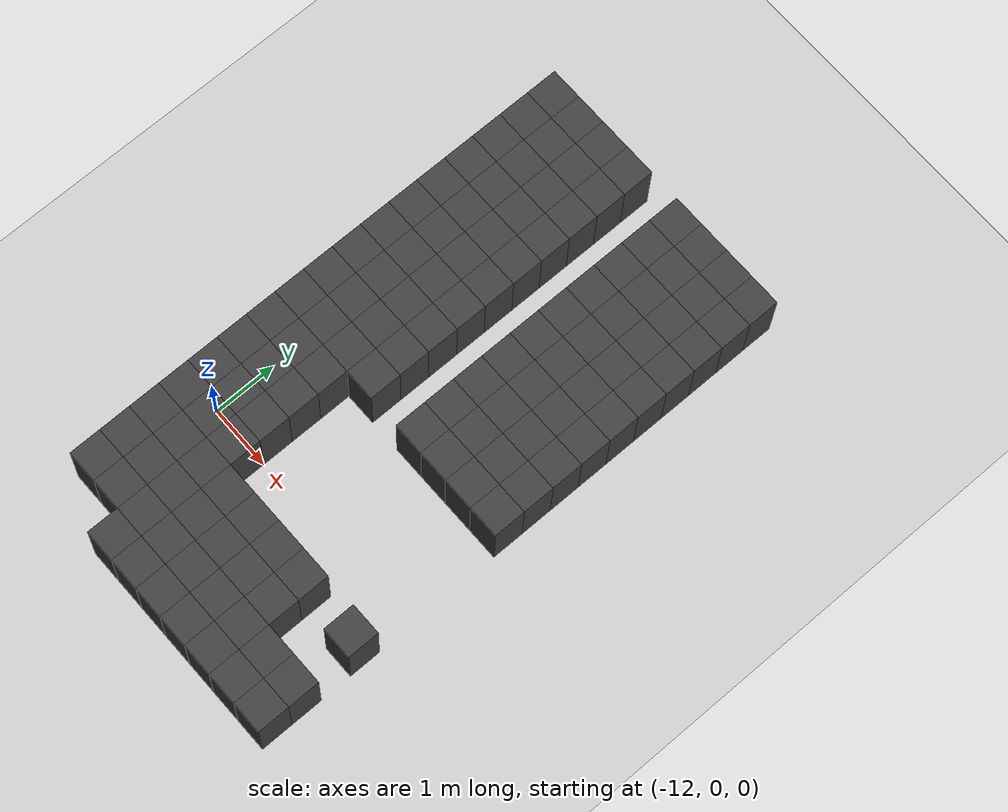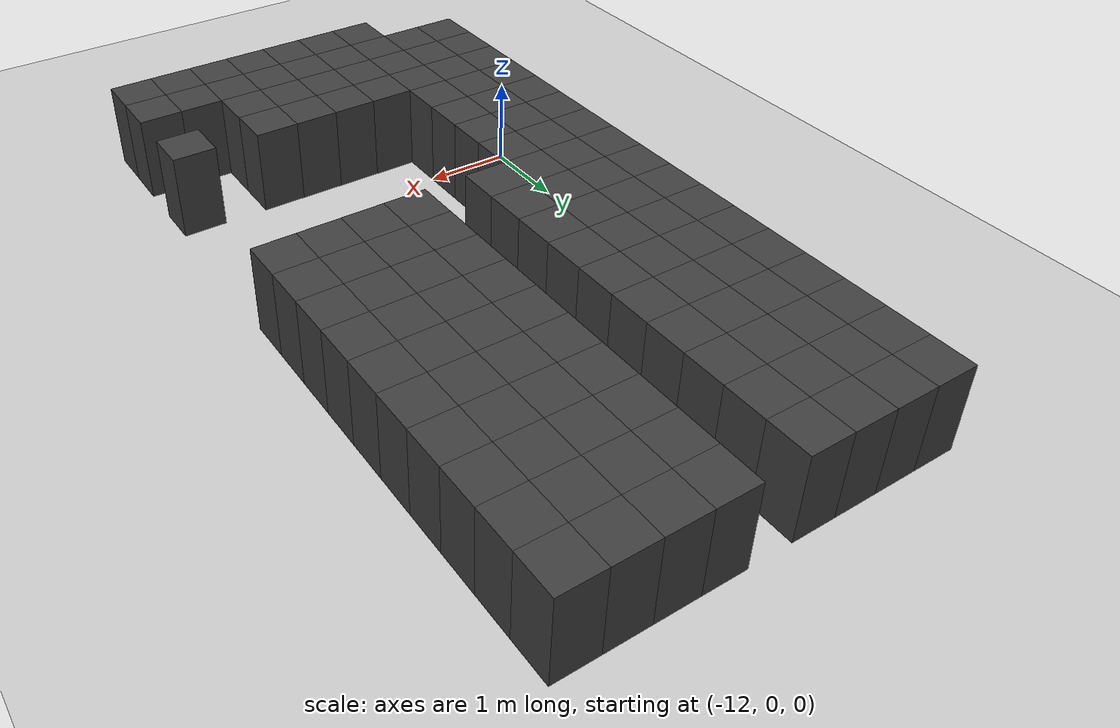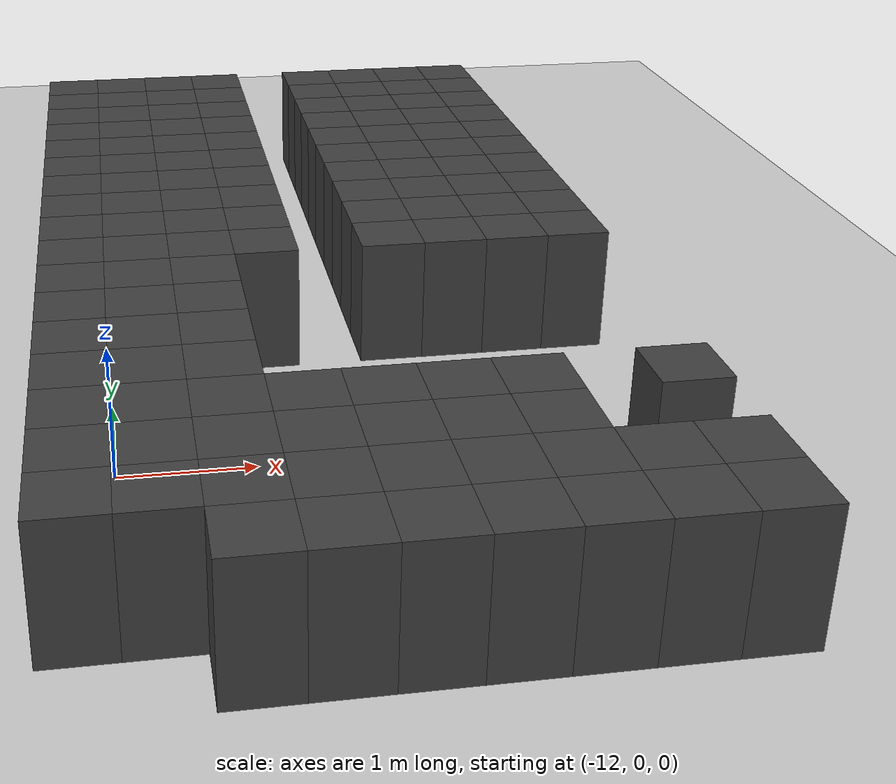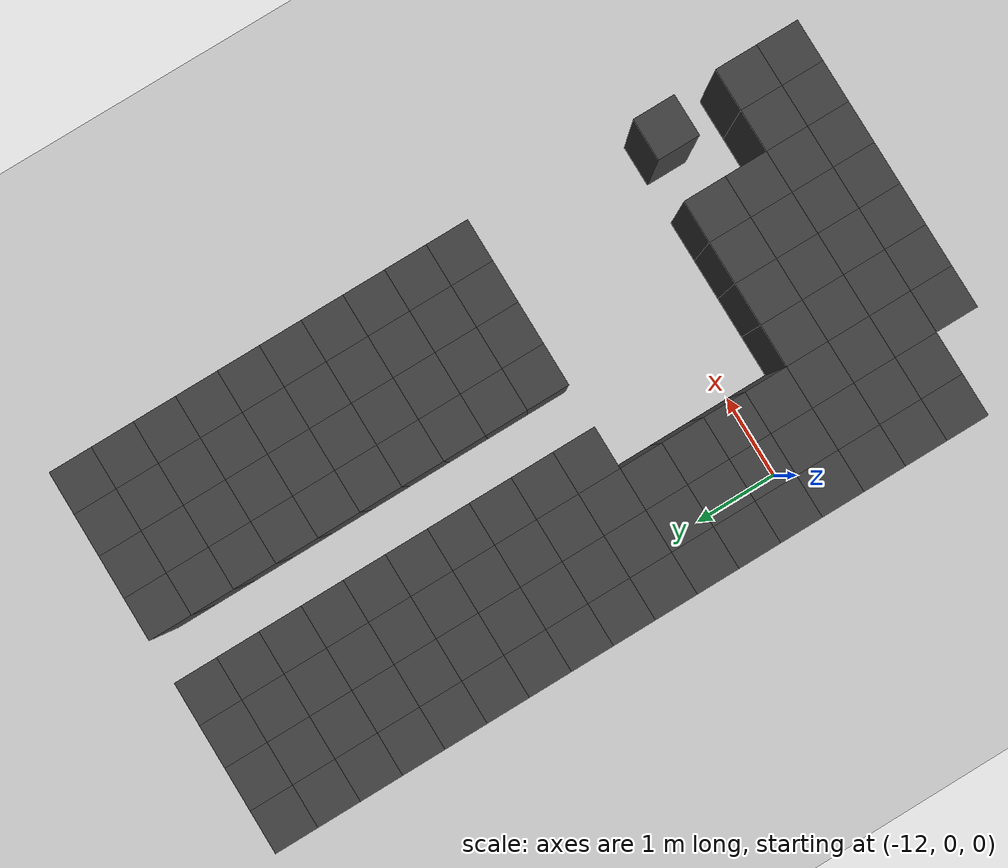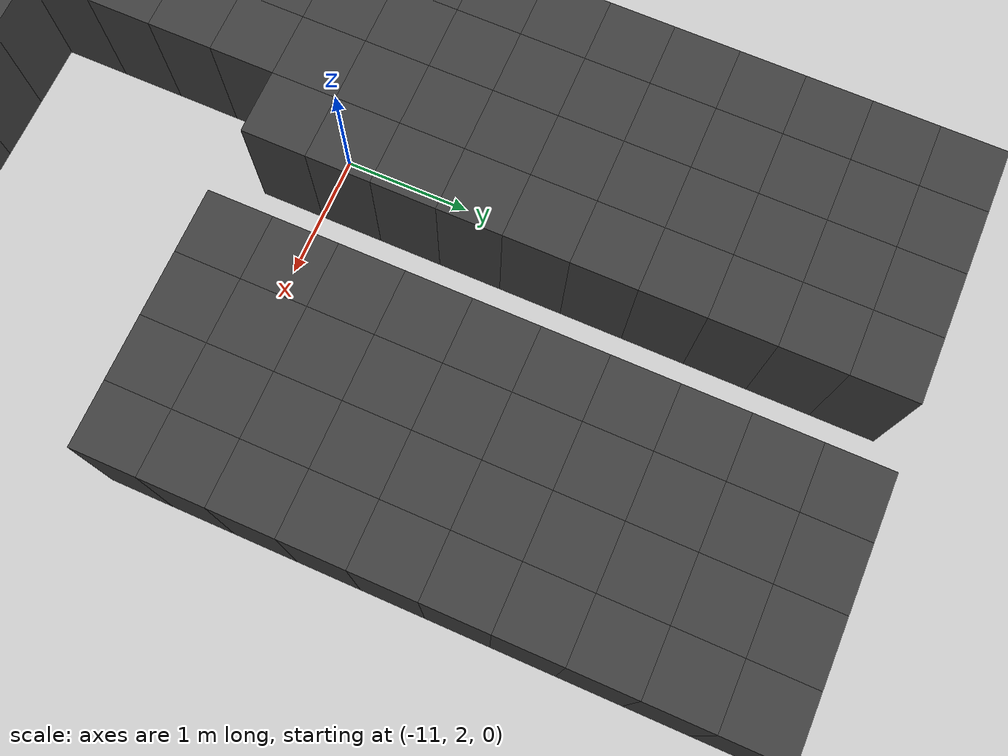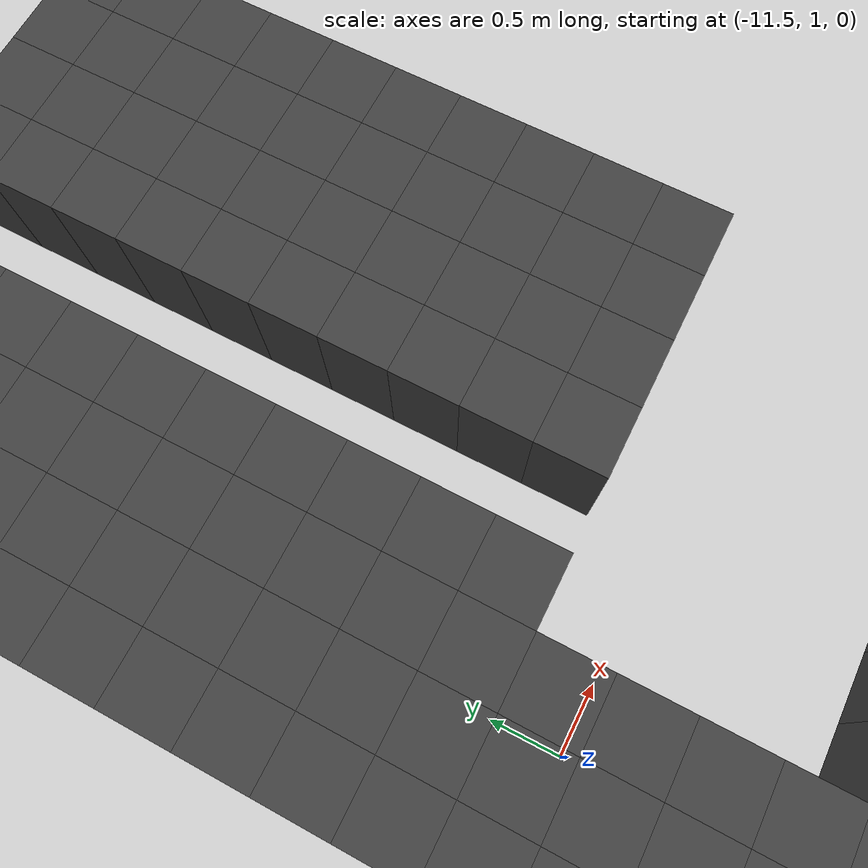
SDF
<sdf version="1.7">
 <world name="map_13364">
  <model name="ground_plane">
   <static>true</static>
   <link name="link">
    <collision name="collision">
     <geometry><plane><normal>0 0 1</normal><size>200 200</size></plane></geometry>
    </collision>
    <visual name="visual">
     <geometry><plane><normal>0 0 1</normal><size>200 200</size></plane></geometry>
     <material><ambient>0.8 0.8 0.8 1</ambient><diffuse>0.8 0.8 0.8 1</diffuse></material>
    </visual>
   </link>
  </model>
  <model name="maze_environment">
   <static>true</static>
   <link name="wall_536">
    <pose>-12.250 6.250 0.500 0 0 0</pose>
    <collision name="col"><geometry><box><size>0.5 0.5 1.0</size></box></geometry></collision>
    <visual name="vis">
     <geometry><box><size>0.5 0.5 1.0</size></box></geometry>
     <material><ambient>0.15 0.15 0.15 1</ambient><diffuse>0.25 0.25 0.25 1</diffuse></material>
    </visual>
   </link>
   <link name="wall_537">
    <pose>-11.750 6.250 0.500 0 0 0</pose>
    <collision name="col"><geometry><box><size>0.5 0.5 1.0</size></box></geometry></collision>
    <visual name="vis">
     <geometry><box><size>0.5 0.5 1.0</size></box></geometry>
     <material><ambient>0.15 0.15 0.15 1</ambient><diffuse>0.25 0.25 0.25 1</diffuse></material>
    </visual>
   </link>
   <link name="wall_538">
    <pose>-11.250 6.250 0.500 0 0 0</pose>
    <collision name="col"><geometry><box><size>0.5 0.5 1.0</size></box></geometry></collision>
    <visual name="vis">
     <geometry><box><size>0.5 0.5 1.0</size></box></geometry>
     <material><ambient>0.15 0.15 0.15 1</ambient><diffuse>0.25 0.25 0.25 1</diffuse></material>
    </visual>
   </link>
   <link name="wall_539">
    <pose>-10.750 6.250 0.500 0 0 0</pose>
    <collision name="col"><geometry><box><size>0.5 0.5 1.0</size></box></geometry></collision>
    <visual name="vis">
     <geometry><box><size>0.5 0.5 1.0</size></box></geometry>
     <material><ambient>0.15 0.15 0.15 1</ambient><diffuse>0.25 0.25 0.25 1</diffuse></material>
    </visual>
   </link>
   <link name="wall_540">
    <pose>-9.750 6.250 0.500 0 0 0</pose>
    <collision name="col"><geometry><box><size>0.5 0.5 1.0</size></box></geometry></collision>
    <visual name="vis">
     <geometry><box><size>0.5 0.5 1.0</size></box></geometry>
     <material><ambient>0.15 0.15 0.15 1</ambient><diffuse>0.25 0.25 0.25 1</diffuse></material>
    </visual>
   </link>
   <link name="wall_541">
    <pose>-9.250 6.250 0.500 0 0 0</pose>
    <collision name="col"><geometry><box><size>0.5 0.5 1.0</size></box></geometry></collision>
    <visual name="vis">
     <geometry><box><size>0.5 0.5 1.0</size></box></geometry>
     <material><ambient>0.15 0.15 0.15 1</ambient><diffuse>0.25 0.25 0.25 1</diffuse></material>
    </visual>
   </link>
   <link name="wall_542">
    <pose>-8.750 6.250 0.500 0 0 0</pose>
    <collision name="col"><geometry><box><size>0.5 0.5 1.0</size></box></geometry></collision>
    <visual name="vis">
     <geometry><box><size>0.5 0.5 1.0</size></box></geometry>
     <material><ambient>0.15 0.15 0.15 1</ambient><diffuse>0.25 0.25 0.25 1</diffuse></material>
    </visual>
   </link>
   <link name="wall_543">
    <pose>-8.250 6.250 0.500 0 0 0</pose>
    <collision name="col"><geometry><box><size>0.5 0.5 1.0</size></box></geometry></collision>
    <visual name="vis">
     <geometry><box><size>0.5 0.5 1.0</size></box></geometry>
     <material><ambient>0.15 0.15 0.15 1</ambient><diffuse>0.25 0.25 0.25 1</diffuse></material>
    </visual>
   </link>
   <link name="wall_568">
    <pose>-12.250 5.750 0.500 0 0 0</pose>
    <collision name="col"><geometry><box><size>0.5 0.5 1.0</size></box></geometry></collision>
    <visual name="vis">
     <geometry><box><size>0.5 0.5 1.0</size></box></geometry>
     <material><ambient>0.15 0.15 0.15 1</ambient><diffuse>0.25 0.25 0.25 1</diffuse></material>
    </visual>
   </link>
   <link name="wall_569">
    <pose>-11.750 5.750 0.500 0 0 0</pose>
    <collision name="col"><geometry><box><size>0.5 0.5 1.0</size></box></geometry></collision>
    <visual name="vis">
     <geometry><box><size>0.5 0.5 1.0</size></box></geometry>
     <material><ambient>0.15 0.15 0.15 1</ambient><diffuse>0.25 0.25 0.25 1</diffuse></material>
    </visual>
   </link>
   <link name="wall_570">
    <pose>-11.250 5.750 0.500 0 0 0</pose>
    <collision name="col"><geometry><box><size>0.5 0.5 1.0</size></box></geometry></collision>
    <visual name="vis">
     <geometry><box><size>0.5 0.5 1.0</size></box></geometry>
     <material><ambient>0.15 0.15 0.15 1</ambient><diffuse>0.25 0.25 0.25 1</diffuse></material>
    </visual>
   </link>
   <link name="wall_571">
    <pose>-10.750 5.750 0.500 0 0 0</pose>
    <collision name="col"><geometry><box><size>0.5 0.5 1.0</size></box></geometry></collision>
    <visual name="vis">
     <geometry><box><size>0.5 0.5 1.0</size></box></geometry>
     <material><ambient>0.15 0.15 0.15 1</ambient><diffuse>0.25 0.25 0.25 1</diffuse></material>
    </visual>
   </link>
   <link name="wall_572">
    <pose>-9.750 5.750 0.500 0 0 0</pose>
    <collision name="col"><geometry><box><size>0.5 0.5 1.0</size></box></geometry></collision>
    <visual name="vis">
     <geometry><box><size>0.5 0.5 1.0</size></box></geometry>
     <material><ambient>0.15 0.15 0.15 1</ambient><diffuse>0.25 0.25 0.25 1</diffuse></material>
    </visual>
   </link>
   <link name="wall_573">
    <pose>-9.250 5.750 0.500 0 0 0</pose>
    <collision name="col"><geometry><box><size>0.5 0.5 1.0</size></box></geometry></collision>
    <visual name="vis">
     <geometry><box><size>0.5 0.5 1.0</size></box></geometry>
     <material><ambient>0.15 0.15 0.15 1</ambient><diffuse>0.25 0.25 0.25 1</diffuse></material>
    </visual>
   </link>
   <link name="wall_574">
    <pose>-8.750 5.750 0.500 0 0 0</pose>
    <collision name="col"><geometry><box><size>0.5 0.5 1.0</size></box></geometry></collision>
    <visual name="vis">
     <geometry><box><size>0.5 0.5 1.0</size></box></geometry>
     <material><ambient>0.15 0.15 0.15 1</ambient><diffuse>0.25 0.25 0.25 1</diffuse></material>
    </visual>
   </link>
   <link name="wall_575">
    <pose>-8.250 5.750 0.500 0 0 0</pose>
    <collision name="col"><geometry><box><size>0.5 0.5 1.0</size></box></geometry></collision>
    <visual name="vis">
     <geometry><box><size>0.5 0.5 1.0</size></box></geometry>
     <material><ambient>0.15 0.15 0.15 1</ambient><diffuse>0.25 0.25 0.25 1</diffuse></material>
    </visual>
   </link>
   <link name="wall_595">
    <pose>-12.250 5.250 0.500 0 0 0</pose>
    <collision name="col"><geometry><box><size>0.5 0.5 1.0</size></box></geometry></collision>
    <visual name="vis">
     <geometry><box><size>0.5 0.5 1.0</size></box></geometry>
     <material><ambient>0.15 0.15 0.15 1</ambient><diffuse>0.25 0.25 0.25 1</diffuse></material>
    </visual>
   </link>
   <link name="wall_596">
    <pose>-11.750 5.250 0.500 0 0 0</pose>
    <collision name="col"><geometry><box><size>0.5 0.5 1.0</size></box></geometry></collision>
    <visual name="vis">
     <geometry><box><size>0.5 0.5 1.0</size></box></geometry>
     <material><ambient>0.15 0.15 0.15 1</ambient><diffuse>0.25 0.25 0.25 1</diffuse></material>
    </visual>
   </link>
   <link name="wall_597">
    <pose>-11.250 5.250 0.500 0 0 0</pose>
    <collision name="col"><geometry><box><size>0.5 0.5 1.0</size></box></geometry></collision>
    <visual name="vis">
     <geometry><box><size>0.5 0.5 1.0</size></box></geometry>
     <material><ambient>0.15 0.15 0.15 1</ambient><diffuse>0.25 0.25 0.25 1</diffuse></material>
    </visual>
   </link>
   <link name="wall_598">
    <pose>-10.750 5.250 0.500 0 0 0</pose>
    <collision name="col"><geometry><box><size>0.5 0.5 1.0</size></box></geometry></collision>
    <visual name="vis">
     <geometry><box><size>0.5 0.5 1.0</size></box></geometry>
     <material><ambient>0.15 0.15 0.15 1</ambient><diffuse>0.25 0.25 0.25 1</diffuse></material>
    </visual>
   </link>
   <link name="wall_599">
    <pose>-9.750 5.250 0.500 0 0 0</pose>
    <collision name="col"><geometry><box><size>0.5 0.5 1.0</size></box></geometry></collision>
    <visual name="vis">
     <geometry><box><size>0.5 0.5 1.0</size></box></geometry>
     <material><ambient>0.15 0.15 0.15 1</ambient><diffuse>0.25 0.25 0.25 1</diffuse></material>
    </visual>
   </link>
   <link name="wall_600">
    <pose>-9.250 5.250 0.500 0 0 0</pose>
    <collision name="col"><geometry><box><size>0.5 0.5 1.0</size></box></geometry></collision>
    <visual name="vis">
     <geometry><box><size>0.5 0.5 1.0</size></box></geometry>
     <material><ambient>0.15 0.15 0.15 1</ambient><diffuse>0.25 0.25 0.25 1</diffuse></material>
    </visual>
   </link>
   <link name="wall_601">
    <pose>-8.750 5.250 0.500 0 0 0</pose>
    <collision name="col"><geometry><box><size>0.5 0.5 1.0</size></box></geometry></collision>
    <visual name="vis">
     <geometry><box><size>0.5 0.5 1.0</size></box></geometry>
     <material><ambient>0.15 0.15 0.15 1</ambient><diffuse>0.25 0.25 0.25 1</diffuse></material>
    </visual>
   </link>
   <link name="wall_602">
    <pose>-8.250 5.250 0.500 0 0 0</pose>
    <collision name="col"><geometry><box><size>0.5 0.5 1.0</size></box></geometry></collision>
    <visual name="vis">
     <geometry><box><size>0.5 0.5 1.0</size></box></geometry>
     <material><ambient>0.15 0.15 0.15 1</ambient><diffuse>0.25 0.25 0.25 1</diffuse></material>
    </visual>
   </link>
   <link name="wall_629">
    <pose>-12.250 4.750 0.500 0 0 0</pose>
    <collision name="col"><geometry><box><size>0.5 0.5 1.0</size></box></geometry></collision>
    <visual name="vis">
     <geometry><box><size>0.5 0.5 1.0</size></box></geometry>
     <material><ambient>0.15 0.15 0.15 1</ambient><diffuse>0.25 0.25 0.25 1</diffuse></material>
    </visual>
   </link>
   <link name="wall_630">
    <pose>-11.750 4.750 0.500 0 0 0</pose>
    <collision name="col"><geometry><box><size>0.5 0.5 1.0</size></box></geometry></collision>
    <visual name="vis">
     <geometry><box><size>0.5 0.5 1.0</size></box></geometry>
     <material><ambient>0.15 0.15 0.15 1</ambient><diffuse>0.25 0.25 0.25 1</diffuse></material>
    </visual>
   </link>
   <link name="wall_631">
    <pose>-11.250 4.750 0.500 0 0 0</pose>
    <collision name="col"><geometry><box><size>0.5 0.5 1.0</size></box></geometry></collision>
    <visual name="vis">
     <geometry><box><size>0.5 0.5 1.0</size></box></geometry>
     <material><ambient>0.15 0.15 0.15 1</ambient><diffuse>0.25 0.25 0.25 1</diffuse></material>
    </visual>
   </link>
   <link name="wall_632">
    <pose>-10.750 4.750 0.500 0 0 0</pose>
    <collision name="col"><geometry><box><size>0.5 0.5 1.0</size></box></geometry></collision>
    <visual name="vis">
     <geometry><box><size>0.5 0.5 1.0</size></box></geometry>
     <material><ambient>0.15 0.15 0.15 1</ambient><diffuse>0.25 0.25 0.25 1</diffuse></material>
    </visual>
   </link>
   <link name="wall_633">
    <pose>-9.750 4.750 0.500 0 0 0</pose>
    <collision name="col"><geometry><box><size>0.5 0.5 1.0</size></box></geometry></collision>
    <visual name="vis">
     <geometry><box><size>0.5 0.5 1.0</size></box></geometry>
     <material><ambient>0.15 0.15 0.15 1</ambient><diffuse>0.25 0.25 0.25 1</diffuse></material>
    </visual>
   </link>
   <link name="wall_634">
    <pose>-9.250 4.750 0.500 0 0 0</pose>
    <collision name="col"><geometry><box><size>0.5 0.5 1.0</size></box></geometry></collision>
    <visual name="vis">
     <geometry><box><size>0.5 0.5 1.0</size></box></geometry>
     <material><ambient>0.15 0.15 0.15 1</ambient><diffuse>0.25 0.25 0.25 1</diffuse></material>
    </visual>
   </link>
   <link name="wall_635">
    <pose>-8.750 4.750 0.500 0 0 0</pose>
    <collision name="col"><geometry><box><size>0.5 0.5 1.0</size></box></geometry></collision>
    <visual name="vis">
     <geometry><box><size>0.5 0.5 1.0</size></box></geometry>
     <material><ambient>0.15 0.15 0.15 1</ambient><diffuse>0.25 0.25 0.25 1</diffuse></material>
    </visual>
   </link>
   <link name="wall_636">
    <pose>-8.250 4.750 0.500 0 0 0</pose>
    <collision name="col"><geometry><box><size>0.5 0.5 1.0</size></box></geometry></collision>
    <visual name="vis">
     <geometry><box><size>0.5 0.5 1.0</size></box></geometry>
     <material><ambient>0.15 0.15 0.15 1</ambient><diffuse>0.25 0.25 0.25 1</diffuse></material>
    </visual>
   </link>
   <link name="wall_649">
    <pose>-12.250 4.250 0.500 0 0 0</pose>
    <collision name="col"><geometry><box><size>0.5 0.5 1.0</size></box></geometry></collision>
    <visual name="vis">
     <geometry><box><size>0.5 0.5 1.0</size></box></geometry>
     <material><ambient>0.15 0.15 0.15 1</ambient><diffuse>0.25 0.25 0.25 1</diffuse></material>
    </visual>
   </link>
   <link name="wall_650">
    <pose>-11.750 4.250 0.500 0 0 0</pose>
    <collision name="col"><geometry><box><size>0.5 0.5 1.0</size></box></geometry></collision>
    <visual name="vis">
     <geometry><box><size>0.5 0.5 1.0</size></box></geometry>
     <material><ambient>0.15 0.15 0.15 1</ambient><diffuse>0.25 0.25 0.25 1</diffuse></material>
    </visual>
   </link>
   <link name="wall_651">
    <pose>-11.250 4.250 0.500 0 0 0</pose>
    <collision name="col"><geometry><box><size>0.5 0.5 1.0</size></box></geometry></collision>
    <visual name="vis">
     <geometry><box><size>0.5 0.5 1.0</size></box></geometry>
     <material><ambient>0.15 0.15 0.15 1</ambient><diffuse>0.25 0.25 0.25 1</diffuse></material>
    </visual>
   </link>
   <link name="wall_652">
    <pose>-10.750 4.250 0.500 0 0 0</pose>
    <collision name="col"><geometry><box><size>0.5 0.5 1.0</size></box></geometry></collision>
    <visual name="vis">
     <geometry><box><size>0.5 0.5 1.0</size></box></geometry>
     <material><ambient>0.15 0.15 0.15 1</ambient><diffuse>0.25 0.25 0.25 1</diffuse></material>
    </visual>
   </link>
   <link name="wall_653">
    <pose>-9.750 4.250 0.500 0 0 0</pose>
    <collision name="col"><geometry><box><size>0.5 0.5 1.0</size></box></geometry></collision>
    <visual name="vis">
     <geometry><box><size>0.5 0.5 1.0</size></box></geometry>
     <material><ambient>0.15 0.15 0.15 1</ambient><diffuse>0.25 0.25 0.25 1</diffuse></material>
    </visual>
   </link>
   <link name="wall_654">
    <pose>-9.250 4.250 0.500 0 0 0</pose>
    <collision name="col"><geometry><box><size>0.5 0.5 1.0</size></box></geometry></collision>
    <visual name="vis">
     <geometry><box><size>0.5 0.5 1.0</size></box></geometry>
     <material><ambient>0.15 0.15 0.15 1</ambient><diffuse>0.25 0.25 0.25 1</diffuse></material>
    </visual>
   </link>
   <link name="wall_655">
    <pose>-8.750 4.250 0.500 0 0 0</pose>
    <collision name="col"><geometry><box><size>0.5 0.5 1.0</size></box></geometry></collision>
    <visual name="vis">
     <geometry><box><size>0.5 0.5 1.0</size></box></geometry>
     <material><ambient>0.15 0.15 0.15 1</ambient><diffuse>0.25 0.25 0.25 1</diffuse></material>
    </visual>
   </link>
   <link name="wall_656">
    <pose>-8.250 4.250 0.500 0 0 0</pose>
    <collision name="col"><geometry><box><size>0.5 0.5 1.0</size></box></geometry></collision>
    <visual name="vis">
     <geometry><box><size>0.5 0.5 1.0</size></box></geometry>
     <material><ambient>0.15 0.15 0.15 1</ambient><diffuse>0.25 0.25 0.25 1</diffuse></material>
    </visual>
   </link>
   <link name="wall_676">
    <pose>-12.250 3.750 0.500 0 0 0</pose>
    <collision name="col"><geometry><box><size>0.5 0.5 1.0</size></box></geometry></collision>
    <visual name="vis">
     <geometry><box><size>0.5 0.5 1.0</size></box></geometry>
     <material><ambient>0.15 0.15 0.15 1</ambient><diffuse>0.25 0.25 0.25 1</diffuse></material>
    </visual>
   </link>
   <link name="wall_677">
    <pose>-11.750 3.750 0.500 0 0 0</pose>
    <collision name="col"><geometry><box><size>0.5 0.5 1.0</size></box></geometry></collision>
    <visual name="vis">
     <geometry><box><size>0.5 0.5 1.0</size></box></geometry>
     <material><ambient>0.15 0.15 0.15 1</ambient><diffuse>0.25 0.25 0.25 1</diffuse></material>
    </visual>
   </link>
   <link name="wall_678">
    <pose>-11.250 3.750 0.500 0 0 0</pose>
    <collision name="col"><geometry><box><size>0.5 0.5 1.0</size></box></geometry></collision>
    <visual name="vis">
     <geometry><box><size>0.5 0.5 1.0</size></box></geometry>
     <material><ambient>0.15 0.15 0.15 1</ambient><diffuse>0.25 0.25 0.25 1</diffuse></material>
    </visual>
   </link>
   <link name="wall_679">
    <pose>-10.750 3.750 0.500 0 0 0</pose>
    <collision name="col"><geometry><box><size>0.5 0.5 1.0</size></box></geometry></collision>
    <visual name="vis">
     <geometry><box><size>0.5 0.5 1.0</size></box></geometry>
     <material><ambient>0.15 0.15 0.15 1</ambient><diffuse>0.25 0.25 0.25 1</diffuse></material>
    </visual>
   </link>
   <link name="wall_680">
    <pose>-9.750 3.750 0.500 0 0 0</pose>
    <collision name="col"><geometry><box><size>0.5 0.5 1.0</size></box></geometry></collision>
    <visual name="vis">
     <geometry><box><size>0.5 0.5 1.0</size></box></geometry>
     <material><ambient>0.15 0.15 0.15 1</ambient><diffuse>0.25 0.25 0.25 1</diffuse></material>
    </visual>
   </link>
   <link name="wall_681">
    <pose>-9.250 3.750 0.500 0 0 0</pose>
    <collision name="col"><geometry><box><size>0.5 0.5 1.0</size></box></geometry></collision>
    <visual name="vis">
     <geometry><box><size>0.5 0.5 1.0</size></box></geometry>
     <material><ambient>0.15 0.15 0.15 1</ambient><diffuse>0.25 0.25 0.25 1</diffuse></material>
    </visual>
   </link>
   <link name="wall_682">
    <pose>-8.750 3.750 0.500 0 0 0</pose>
    <collision name="col"><geometry><box><size>0.5 0.5 1.0</size></box></geometry></collision>
    <visual name="vis">
     <geometry><box><size>0.5 0.5 1.0</size></box></geometry>
     <material><ambient>0.15 0.15 0.15 1</ambient><diffuse>0.25 0.25 0.25 1</diffuse></material>
    </visual>
   </link>
   <link name="wall_683">
    <pose>-8.250 3.750 0.500 0 0 0</pose>
    <collision name="col"><geometry><box><size>0.5 0.5 1.0</size></box></geometry></collision>
    <visual name="vis">
     <geometry><box><size>0.5 0.5 1.0</size></box></geometry>
     <material><ambient>0.15 0.15 0.15 1</ambient><diffuse>0.25 0.25 0.25 1</diffuse></material>
    </visual>
   </link>
   <link name="wall_708">
    <pose>-12.250 3.250 0.500 0 0 0</pose>
    <collision name="col"><geometry><box><size>0.5 0.5 1.0</size></box></geometry></collision>
    <visual name="vis">
     <geometry><box><size>0.5 0.5 1.0</size></box></geometry>
     <material><ambient>0.15 0.15 0.15 1</ambient><diffuse>0.25 0.25 0.25 1</diffuse></material>
    </visual>
   </link>
   <link name="wall_709">
    <pose>-11.750 3.250 0.500 0 0 0</pose>
    <collision name="col"><geometry><box><size>0.5 0.5 1.0</size></box></geometry></collision>
    <visual name="vis">
     <geometry><box><size>0.5 0.5 1.0</size></box></geometry>
     <material><ambient>0.15 0.15 0.15 1</ambient><diffuse>0.25 0.25 0.25 1</diffuse></material>
    </visual>
   </link>
   <link name="wall_710">
    <pose>-11.250 3.250 0.500 0 0 0</pose>
    <collision name="col"><geometry><box><size>0.5 0.5 1.0</size></box></geometry></collision>
    <visual name="vis">
     <geometry><box><size>0.5 0.5 1.0</size></box></geometry>
     <material><ambient>0.15 0.15 0.15 1</ambient><diffuse>0.25 0.25 0.25 1</diffuse></material>
    </visual>
   </link>
   <link name="wall_711">
    <pose>-10.750 3.250 0.500 0 0 0</pose>
    <collision name="col"><geometry><box><size>0.5 0.5 1.0</size></box></geometry></collision>
    <visual name="vis">
     <geometry><box><size>0.5 0.5 1.0</size></box></geometry>
     <material><ambient>0.15 0.15 0.15 1</ambient><diffuse>0.25 0.25 0.25 1</diffuse></material>
    </visual>
   </link>
   <link name="wall_712">
    <pose>-9.750 3.250 0.500 0 0 0</pose>
    <collision name="col"><geometry><box><size>0.5 0.5 1.0</size></box></geometry></collision>
    <visual name="vis">
     <geometry><box><size>0.5 0.5 1.0</size></box></geometry>
     <material><ambient>0.15 0.15 0.15 1</ambient><diffuse>0.25 0.25 0.25 1</diffuse></material>
    </visual>
   </link>
   <link name="wall_713">
    <pose>-9.250 3.250 0.500 0 0 0</pose>
    <collision name="col"><geometry><box><size>0.5 0.5 1.0</size></box></geometry></collision>
    <visual name="vis">
     <geometry><box><size>0.5 0.5 1.0</size></box></geometry>
     <material><ambient>0.15 0.15 0.15 1</ambient><diffuse>0.25 0.25 0.25 1</diffuse></material>
    </visual>
   </link>
   <link name="wall_714">
    <pose>-8.750 3.250 0.500 0 0 0</pose>
    <collision name="col"><geometry><box><size>0.5 0.5 1.0</size></box></geometry></collision>
    <visual name="vis">
     <geometry><box><size>0.5 0.5 1.0</size></box></geometry>
     <material><ambient>0.15 0.15 0.15 1</ambient><diffuse>0.25 0.25 0.25 1</diffuse></material>
    </visual>
   </link>
   <link name="wall_715">
    <pose>-8.250 3.250 0.500 0 0 0</pose>
    <collision name="col"><geometry><box><size>0.5 0.5 1.0</size></box></geometry></collision>
    <visual name="vis">
     <geometry><box><size>0.5 0.5 1.0</size></box></geometry>
     <material><ambient>0.15 0.15 0.15 1</ambient><diffuse>0.25 0.25 0.25 1</diffuse></material>
    </visual>
   </link>
   <link name="wall_741">
    <pose>-12.250 2.750 0.500 0 0 0</pose>
    <collision name="col"><geometry><box><size>0.5 0.5 1.0</size></box></geometry></collision>
    <visual name="vis">
     <geometry><box><size>0.5 0.5 1.0</size></box></geometry>
     <material><ambient>0.15 0.15 0.15 1</ambient><diffuse>0.25 0.25 0.25 1</diffuse></material>
    </visual>
   </link>
   <link name="wall_742">
    <pose>-11.750 2.750 0.500 0 0 0</pose>
    <collision name="col"><geometry><box><size>0.5 0.5 1.0</size></box></geometry></collision>
    <visual name="vis">
     <geometry><box><size>0.5 0.5 1.0</size></box></geometry>
     <material><ambient>0.15 0.15 0.15 1</ambient><diffuse>0.25 0.25 0.25 1</diffuse></material>
    </visual>
   </link>
   <link name="wall_743">
    <pose>-11.250 2.750 0.500 0 0 0</pose>
    <collision name="col"><geometry><box><size>0.5 0.5 1.0</size></box></geometry></collision>
    <visual name="vis">
     <geometry><box><size>0.5 0.5 1.0</size></box></geometry>
     <material><ambient>0.15 0.15 0.15 1</ambient><diffuse>0.25 0.25 0.25 1</diffuse></material>
    </visual>
   </link>
   <link name="wall_744">
    <pose>-10.750 2.750 0.500 0 0 0</pose>
    <collision name="col"><geometry><box><size>0.5 0.5 1.0</size></box></geometry></collision>
    <visual name="vis">
     <geometry><box><size>0.5 0.5 1.0</size></box></geometry>
     <material><ambient>0.15 0.15 0.15 1</ambient><diffuse>0.25 0.25 0.25 1</diffuse></material>
    </visual>
   </link>
   <link name="wall_745">
    <pose>-9.750 2.750 0.500 0 0 0</pose>
    <collision name="col"><geometry><box><size>0.5 0.5 1.0</size></box></geometry></collision>
    <visual name="vis">
     <geometry><box><size>0.5 0.5 1.0</size></box></geometry>
     <material><ambient>0.15 0.15 0.15 1</ambient><diffuse>0.25 0.25 0.25 1</diffuse></material>
    </visual>
   </link>
   <link name="wall_746">
    <pose>-9.250 2.750 0.500 0 0 0</pose>
    <collision name="col"><geometry><box><size>0.5 0.5 1.0</size></box></geometry></collision>
    <visual name="vis">
     <geometry><box><size>0.5 0.5 1.0</size></box></geometry>
     <material><ambient>0.15 0.15 0.15 1</ambient><diffuse>0.25 0.25 0.25 1</diffuse></material>
    </visual>
   </link>
   <link name="wall_747">
    <pose>-8.750 2.750 0.500 0 0 0</pose>
    <collision name="col"><geometry><box><size>0.5 0.5 1.0</size></box></geometry></collision>
    <visual name="vis">
     <geometry><box><size>0.5 0.5 1.0</size></box></geometry>
     <material><ambient>0.15 0.15 0.15 1</ambient><diffuse>0.25 0.25 0.25 1</diffuse></material>
    </visual>
   </link>
   <link name="wall_748">
    <pose>-8.250 2.750 0.500 0 0 0</pose>
    <collision name="col"><geometry><box><size>0.5 0.5 1.0</size></box></geometry></collision>
    <visual name="vis">
     <geometry><box><size>0.5 0.5 1.0</size></box></geometry>
     <material><ambient>0.15 0.15 0.15 1</ambient><diffuse>0.25 0.25 0.25 1</diffuse></material>
    </visual>
   </link>
   <link name="wall_772">
    <pose>-12.250 2.250 0.500 0 0 0</pose>
    <collision name="col"><geometry><box><size>0.5 0.5 1.0</size></box></geometry></collision>
    <visual name="vis">
     <geometry><box><size>0.5 0.5 1.0</size></box></geometry>
     <material><ambient>0.15 0.15 0.15 1</ambient><diffuse>0.25 0.25 0.25 1</diffuse></material>
    </visual>
   </link>
   <link name="wall_773">
    <pose>-11.750 2.250 0.500 0 0 0</pose>
    <collision name="col"><geometry><box><size>0.5 0.5 1.0</size></box></geometry></collision>
    <visual name="vis">
     <geometry><box><size>0.5 0.5 1.0</size></box></geometry>
     <material><ambient>0.15 0.15 0.15 1</ambient><diffuse>0.25 0.25 0.25 1</diffuse></material>
    </visual>
   </link>
   <link name="wall_774">
    <pose>-11.250 2.250 0.500 0 0 0</pose>
    <collision name="col"><geometry><box><size>0.5 0.5 1.0</size></box></geometry></collision>
    <visual name="vis">
     <geometry><box><size>0.5 0.5 1.0</size></box></geometry>
     <material><ambient>0.15 0.15 0.15 1</ambient><diffuse>0.25 0.25 0.25 1</diffuse></material>
    </visual>
   </link>
   <link name="wall_775">
    <pose>-10.750 2.250 0.500 0 0 0</pose>
    <collision name="col"><geometry><box><size>0.5 0.5 1.0</size></box></geometry></collision>
    <visual name="vis">
     <geometry><box><size>0.5 0.5 1.0</size></box></geometry>
     <material><ambient>0.15 0.15 0.15 1</ambient><diffuse>0.25 0.25 0.25 1</diffuse></material>
    </visual>
   </link>
   <link name="wall_776">
    <pose>-9.750 2.250 0.500 0 0 0</pose>
    <collision name="col"><geometry><box><size>0.5 0.5 1.0</size></box></geometry></collision>
    <visual name="vis">
     <geometry><box><size>0.5 0.5 1.0</size></box></geometry>
     <material><ambient>0.15 0.15 0.15 1</ambient><diffuse>0.25 0.25 0.25 1</diffuse></material>
    </visual>
   </link>
   <link name="wall_777">
    <pose>-9.250 2.250 0.500 0 0 0</pose>
    <collision name="col"><geometry><box><size>0.5 0.5 1.0</size></box></geometry></collision>
    <visual name="vis">
     <geometry><box><size>0.5 0.5 1.0</size></box></geometry>
     <material><ambient>0.15 0.15 0.15 1</ambient><diffuse>0.25 0.25 0.25 1</diffuse></material>
    </visual>
   </link>
   <link name="wall_778">
    <pose>-8.750 2.250 0.500 0 0 0</pose>
    <collision name="col"><geometry><box><size>0.5 0.5 1.0</size></box></geometry></collision>
    <visual name="vis">
     <geometry><box><size>0.5 0.5 1.0</size></box></geometry>
     <material><ambient>0.15 0.15 0.15 1</ambient><diffuse>0.25 0.25 0.25 1</diffuse></material>
    </visual>
   </link>
   <link name="wall_779">
    <pose>-8.250 2.250 0.500 0 0 0</pose>
    <collision name="col"><geometry><box><size>0.5 0.5 1.0</size></box></geometry></collision>
    <visual name="vis">
     <geometry><box><size>0.5 0.5 1.0</size></box></geometry>
     <material><ambient>0.15 0.15 0.15 1</ambient><diffuse>0.25 0.25 0.25 1</diffuse></material>
    </visual>
   </link>
   <link name="wall_803">
    <pose>-12.250 1.750 0.500 0 0 0</pose>
    <collision name="col"><geometry><box><size>0.5 0.5 1.0</size></box></geometry></collision>
    <visual name="vis">
     <geometry><box><size>0.5 0.5 1.0</size></box></geometry>
     <material><ambient>0.15 0.15 0.15 1</ambient><diffuse>0.25 0.25 0.25 1</diffuse></material>
    </visual>
   </link>
   <link name="wall_804">
    <pose>-11.750 1.750 0.500 0 0 0</pose>
    <collision name="col"><geometry><box><size>0.5 0.5 1.0</size></box></geometry></collision>
    <visual name="vis">
     <geometry><box><size>0.5 0.5 1.0</size></box></geometry>
     <material><ambient>0.15 0.15 0.15 1</ambient><diffuse>0.25 0.25 0.25 1</diffuse></material>
    </visual>
   </link>
   <link name="wall_805">
    <pose>-11.250 1.750 0.500 0 0 0</pose>
    <collision name="col"><geometry><box><size>0.5 0.5 1.0</size></box></geometry></collision>
    <visual name="vis">
     <geometry><box><size>0.5 0.5 1.0</size></box></geometry>
     <material><ambient>0.15 0.15 0.15 1</ambient><diffuse>0.25 0.25 0.25 1</diffuse></material>
    </visual>
   </link>
   <link name="wall_806">
    <pose>-10.750 1.750 0.500 0 0 0</pose>
    <collision name="col"><geometry><box><size>0.5 0.5 1.0</size></box></geometry></collision>
    <visual name="vis">
     <geometry><box><size>0.5 0.5 1.0</size></box></geometry>
     <material><ambient>0.15 0.15 0.15 1</ambient><diffuse>0.25 0.25 0.25 1</diffuse></material>
    </visual>
   </link>
   <link name="wall_807">
    <pose>-9.750 1.750 0.500 0 0 0</pose>
    <collision name="col"><geometry><box><size>0.5 0.5 1.0</size></box></geometry></collision>
    <visual name="vis">
     <geometry><box><size>0.5 0.5 1.0</size></box></geometry>
     <material><ambient>0.15 0.15 0.15 1</ambient><diffuse>0.25 0.25 0.25 1</diffuse></material>
    </visual>
   </link>
   <link name="wall_808">
    <pose>-9.250 1.750 0.500 0 0 0</pose>
    <collision name="col"><geometry><box><size>0.5 0.5 1.0</size></box></geometry></collision>
    <visual name="vis">
     <geometry><box><size>0.5 0.5 1.0</size></box></geometry>
     <material><ambient>0.15 0.15 0.15 1</ambient><diffuse>0.25 0.25 0.25 1</diffuse></material>
    </visual>
   </link>
   <link name="wall_809">
    <pose>-8.750 1.750 0.500 0 0 0</pose>
    <collision name="col"><geometry><box><size>0.5 0.5 1.0</size></box></geometry></collision>
    <visual name="vis">
     <geometry><box><size>0.5 0.5 1.0</size></box></geometry>
     <material><ambient>0.15 0.15 0.15 1</ambient><diffuse>0.25 0.25 0.25 1</diffuse></material>
    </visual>
   </link>
   <link name="wall_810">
    <pose>-8.250 1.750 0.500 0 0 0</pose>
    <collision name="col"><geometry><box><size>0.5 0.5 1.0</size></box></geometry></collision>
    <visual name="vis">
     <geometry><box><size>0.5 0.5 1.0</size></box></geometry>
     <material><ambient>0.15 0.15 0.15 1</ambient><diffuse>0.25 0.25 0.25 1</diffuse></material>
    </visual>
   </link>
   <link name="wall_834">
    <pose>-12.250 1.250 0.500 0 0 0</pose>
    <collision name="col"><geometry><box><size>0.5 0.5 1.0</size></box></geometry></collision>
    <visual name="vis">
     <geometry><box><size>0.5 0.5 1.0</size></box></geometry>
     <material><ambient>0.15 0.15 0.15 1</ambient><diffuse>0.25 0.25 0.25 1</diffuse></material>
    </visual>
   </link>
   <link name="wall_835">
    <pose>-11.750 1.250 0.500 0 0 0</pose>
    <collision name="col"><geometry><box><size>0.5 0.5 1.0</size></box></geometry></collision>
    <visual name="vis">
     <geometry><box><size>0.5 0.5 1.0</size></box></geometry>
     <material><ambient>0.15 0.15 0.15 1</ambient><diffuse>0.25 0.25 0.25 1</diffuse></material>
    </visual>
   </link>
   <link name="wall_836">
    <pose>-11.250 1.250 0.500 0 0 0</pose>
    <collision name="col"><geometry><box><size>0.5 0.5 1.0</size></box></geometry></collision>
    <visual name="vis">
     <geometry><box><size>0.5 0.5 1.0</size></box></geometry>
     <material><ambient>0.15 0.15 0.15 1</ambient><diffuse>0.25 0.25 0.25 1</diffuse></material>
    </visual>
   </link>
   <link name="wall_856">
    <pose>-12.250 0.750 0.500 0 0 0</pose>
    <collision name="col"><geometry><box><size>0.5 0.5 1.0</size></box></geometry></collision>
    <visual name="vis">
     <geometry><box><size>0.5 0.5 1.0</size></box></geometry>
     <material><ambient>0.15 0.15 0.15 1</ambient><diffuse>0.25 0.25 0.25 1</diffuse></material>
    </visual>
   </link>
   <link name="wall_857">
    <pose>-11.750 0.750 0.500 0 0 0</pose>
    <collision name="col"><geometry><box><size>0.5 0.5 1.0</size></box></geometry></collision>
    <visual name="vis">
     <geometry><box><size>0.5 0.5 1.0</size></box></geometry>
     <material><ambient>0.15 0.15 0.15 1</ambient><diffuse>0.25 0.25 0.25 1</diffuse></material>
    </visual>
   </link>
   <link name="wall_858">
    <pose>-11.250 0.750 0.500 0 0 0</pose>
    <collision name="col"><geometry><box><size>0.5 0.5 1.0</size></box></geometry></collision>
    <visual name="vis">
     <geometry><box><size>0.5 0.5 1.0</size></box></geometry>
     <material><ambient>0.15 0.15 0.15 1</ambient><diffuse>0.25 0.25 0.25 1</diffuse></material>
    </visual>
   </link>
   <link name="wall_884">
    <pose>-12.250 0.250 0.500 0 0 0</pose>
    <collision name="col"><geometry><box><size>0.5 0.5 1.0</size></box></geometry></collision>
    <visual name="vis">
     <geometry><box><size>0.5 0.5 1.0</size></box></geometry>
     <material><ambient>0.15 0.15 0.15 1</ambient><diffuse>0.25 0.25 0.25 1</diffuse></material>
    </visual>
   </link>
   <link name="wall_885">
    <pose>-11.750 0.250 0.500 0 0 0</pose>
    <collision name="col"><geometry><box><size>0.5 0.5 1.0</size></box></geometry></collision>
    <visual name="vis">
     <geometry><box><size>0.5 0.5 1.0</size></box></geometry>
     <material><ambient>0.15 0.15 0.15 1</ambient><diffuse>0.25 0.25 0.25 1</diffuse></material>
    </visual>
   </link>
   <link name="wall_886">
    <pose>-11.250 0.250 0.500 0 0 0</pose>
    <collision name="col"><geometry><box><size>0.5 0.5 1.0</size></box></geometry></collision>
    <visual name="vis">
     <geometry><box><size>0.5 0.5 1.0</size></box></geometry>
     <material><ambient>0.15 0.15 0.15 1</ambient><diffuse>0.25 0.25 0.25 1</diffuse></material>
    </visual>
   </link>
   <link name="wall_912">
    <pose>-12.250 -0.250 0.500 0 0 0</pose>
    <collision name="col"><geometry><box><size>0.5 0.5 1.0</size></box></geometry></collision>
    <visual name="vis">
     <geometry><box><size>0.5 0.5 1.0</size></box></geometry>
     <material><ambient>0.15 0.15 0.15 1</ambient><diffuse>0.25 0.25 0.25 1</diffuse></material>
    </visual>
   </link>
   <link name="wall_913">
    <pose>-11.750 -0.250 0.500 0 0 0</pose>
    <collision name="col"><geometry><box><size>0.5 0.5 1.0</size></box></geometry></collision>
    <visual name="vis">
     <geometry><box><size>0.5 0.5 1.0</size></box></geometry>
     <material><ambient>0.15 0.15 0.15 1</ambient><diffuse>0.25 0.25 0.25 1</diffuse></material>
    </visual>
   </link>
   <link name="wall_914">
    <pose>-11.250 -0.250 0.500 0 0 0</pose>
    <collision name="col"><geometry><box><size>0.5 0.5 1.0</size></box></geometry></collision>
    <visual name="vis">
     <geometry><box><size>0.5 0.5 1.0</size></box></geometry>
     <material><ambient>0.15 0.15 0.15 1</ambient><diffuse>0.25 0.25 0.25 1</diffuse></material>
    </visual>
   </link>
   <link name="wall_925">
    <pose>-12.250 -0.750 0.500 0 0 0</pose>
    <collision name="col"><geometry><box><size>0.5 0.5 1.0</size></box></geometry></collision>
    <visual name="vis">
     <geometry><box><size>0.5 0.5 1.0</size></box></geometry>
     <material><ambient>0.15 0.15 0.15 1</ambient><diffuse>0.25 0.25 0.25 1</diffuse></material>
    </visual>
   </link>
   <link name="wall_926">
    <pose>-11.750 -0.750 0.500 0 0 0</pose>
    <collision name="col"><geometry><box><size>0.5 0.5 1.0</size></box></geometry></collision>
    <visual name="vis">
     <geometry><box><size>0.5 0.5 1.0</size></box></geometry>
     <material><ambient>0.15 0.15 0.15 1</ambient><diffuse>0.25 0.25 0.25 1</diffuse></material>
    </visual>
   </link>
   <link name="wall_927">
    <pose>-11.250 -0.750 0.500 0 0 0</pose>
    <collision name="col"><geometry><box><size>0.5 0.5 1.0</size></box></geometry></collision>
    <visual name="vis">
     <geometry><box><size>0.5 0.5 1.0</size></box></geometry>
     <material><ambient>0.15 0.15 0.15 1</ambient><diffuse>0.25 0.25 0.25 1</diffuse></material>
    </visual>
   </link>
   <link name="wall_928">
    <pose>-10.750 -0.750 0.500 0 0 0</pose>
    <collision name="col"><geometry><box><size>0.5 0.5 1.0</size></box></geometry></collision>
    <visual name="vis">
     <geometry><box><size>0.5 0.5 1.0</size></box></geometry>
     <material><ambient>0.15 0.15 0.15 1</ambient><diffuse>0.25 0.25 0.25 1</diffuse></material>
    </visual>
   </link>
   <link name="wall_929">
    <pose>-10.250 -0.750 0.500 0 0 0</pose>
    <collision name="col"><geometry><box><size>0.5 0.5 1.0</size></box></geometry></collision>
    <visual name="vis">
     <geometry><box><size>0.5 0.5 1.0</size></box></geometry>
     <material><ambient>0.15 0.15 0.15 1</ambient><diffuse>0.25 0.25 0.25 1</diffuse></material>
    </visual>
   </link>
   <link name="wall_930">
    <pose>-9.750 -0.750 0.500 0 0 0</pose>
    <collision name="col"><geometry><box><size>0.5 0.5 1.0</size></box></geometry></collision>
    <visual name="vis">
     <geometry><box><size>0.5 0.5 1.0</size></box></geometry>
     <material><ambient>0.15 0.15 0.15 1</ambient><diffuse>0.25 0.25 0.25 1</diffuse></material>
    </visual>
   </link>
   <link name="wall_931">
    <pose>-9.250 -0.750 0.500 0 0 0</pose>
    <collision name="col"><geometry><box><size>0.5 0.5 1.0</size></box></geometry></collision>
    <visual name="vis">
     <geometry><box><size>0.5 0.5 1.0</size></box></geometry>
     <material><ambient>0.15 0.15 0.15 1</ambient><diffuse>0.25 0.25 0.25 1</diffuse></material>
    </visual>
   </link>
   <link name="wall_932">
    <pose>-8.250 -0.750 0.500 0 0 0</pose>
    <collision name="col"><geometry><box><size>0.5 0.5 1.0</size></box></geometry></collision>
    <visual name="vis">
     <geometry><box><size>0.5 0.5 1.0</size></box></geometry>
     <material><ambient>0.15 0.15 0.15 1</ambient><diffuse>0.25 0.25 0.25 1</diffuse></material>
    </visual>
   </link>
   <link name="wall_955">
    <pose>-12.250 -1.250 0.500 0 0 0</pose>
    <collision name="col"><geometry><box><size>0.5 0.5 1.0</size></box></geometry></collision>
    <visual name="vis">
     <geometry><box><size>0.5 0.5 1.0</size></box></geometry>
     <material><ambient>0.15 0.15 0.15 1</ambient><diffuse>0.25 0.25 0.25 1</diffuse></material>
    </visual>
   </link>
   <link name="wall_956">
    <pose>-11.750 -1.250 0.500 0 0 0</pose>
    <collision name="col"><geometry><box><size>0.5 0.5 1.0</size></box></geometry></collision>
    <visual name="vis">
     <geometry><box><size>0.5 0.5 1.0</size></box></geometry>
     <material><ambient>0.15 0.15 0.15 1</ambient><diffuse>0.25 0.25 0.25 1</diffuse></material>
    </visual>
   </link>
   <link name="wall_957">
    <pose>-11.250 -1.250 0.500 0 0 0</pose>
    <collision name="col"><geometry><box><size>0.5 0.5 1.0</size></box></geometry></collision>
    <visual name="vis">
     <geometry><box><size>0.5 0.5 1.0</size></box></geometry>
     <material><ambient>0.15 0.15 0.15 1</ambient><diffuse>0.25 0.25 0.25 1</diffuse></material>
    </visual>
   </link>
   <link name="wall_958">
    <pose>-10.750 -1.250 0.500 0 0 0</pose>
    <collision name="col"><geometry><box><size>0.5 0.5 1.0</size></box></geometry></collision>
    <visual name="vis">
     <geometry><box><size>0.5 0.5 1.0</size></box></geometry>
     <material><ambient>0.15 0.15 0.15 1</ambient><diffuse>0.25 0.25 0.25 1</diffuse></material>
    </visual>
   </link>
   <link name="wall_959">
    <pose>-10.250 -1.250 0.500 0 0 0</pose>
    <collision name="col"><geometry><box><size>0.5 0.5 1.0</size></box></geometry></collision>
    <visual name="vis">
     <geometry><box><size>0.5 0.5 1.0</size></box></geometry>
     <material><ambient>0.15 0.15 0.15 1</ambient><diffuse>0.25 0.25 0.25 1</diffuse></material>
    </visual>
   </link>
   <link name="wall_960">
    <pose>-9.750 -1.250 0.500 0 0 0</pose>
    <collision name="col"><geometry><box><size>0.5 0.5 1.0</size></box></geometry></collision>
    <visual name="vis">
     <geometry><box><size>0.5 0.5 1.0</size></box></geometry>
     <material><ambient>0.15 0.15 0.15 1</ambient><diffuse>0.25 0.25 0.25 1</diffuse></material>
    </visual>
   </link>
   <link name="wall_961">
    <pose>-9.250 -1.250 0.500 0 0 0</pose>
    <collision name="col"><geometry><box><size>0.5 0.5 1.0</size></box></geometry></collision>
    <visual name="vis">
     <geometry><box><size>0.5 0.5 1.0</size></box></geometry>
     <material><ambient>0.15 0.15 0.15 1</ambient><diffuse>0.25 0.25 0.25 1</diffuse></material>
    </visual>
   </link>
   <link name="wall_982">
    <pose>-12.250 -1.750 0.500 0 0 0</pose>
    <collision name="col"><geometry><box><size>0.5 0.5 1.0</size></box></geometry></collision>
    <visual name="vis">
     <geometry><box><size>0.5 0.5 1.0</size></box></geometry>
     <material><ambient>0.15 0.15 0.15 1</ambient><diffuse>0.25 0.25 0.25 1</diffuse></material>
    </visual>
   </link>
   <link name="wall_983">
    <pose>-11.750 -1.750 0.500 0 0 0</pose>
    <collision name="col"><geometry><box><size>0.5 0.5 1.0</size></box></geometry></collision>
    <visual name="vis">
     <geometry><box><size>0.5 0.5 1.0</size></box></geometry>
     <material><ambient>0.15 0.15 0.15 1</ambient><diffuse>0.25 0.25 0.25 1</diffuse></material>
    </visual>
   </link>
   <link name="wall_984">
    <pose>-11.250 -1.750 0.500 0 0 0</pose>
    <collision name="col"><geometry><box><size>0.5 0.5 1.0</size></box></geometry></collision>
    <visual name="vis">
     <geometry><box><size>0.5 0.5 1.0</size></box></geometry>
     <material><ambient>0.15 0.15 0.15 1</ambient><diffuse>0.25 0.25 0.25 1</diffuse></material>
    </visual>
   </link>
   <link name="wall_985">
    <pose>-10.750 -1.750 0.500 0 0 0</pose>
    <collision name="col"><geometry><box><size>0.5 0.5 1.0</size></box></geometry></collision>
    <visual name="vis">
     <geometry><box><size>0.5 0.5 1.0</size></box></geometry>
     <material><ambient>0.15 0.15 0.15 1</ambient><diffuse>0.25 0.25 0.25 1</diffuse></material>
    </visual>
   </link>
   <link name="wall_986">
    <pose>-10.250 -1.750 0.500 0 0 0</pose>
    <collision name="col"><geometry><box><size>0.5 0.5 1.0</size></box></geometry></collision>
    <visual name="vis">
     <geometry><box><size>0.5 0.5 1.0</size></box></geometry>
     <material><ambient>0.15 0.15 0.15 1</ambient><diffuse>0.25 0.25 0.25 1</diffuse></material>
    </visual>
   </link>
   <link name="wall_987">
    <pose>-9.750 -1.750 0.500 0 0 0</pose>
    <collision name="col"><geometry><box><size>0.5 0.5 1.0</size></box></geometry></collision>
    <visual name="vis">
     <geometry><box><size>0.5 0.5 1.0</size></box></geometry>
     <material><ambient>0.15 0.15 0.15 1</ambient><diffuse>0.25 0.25 0.25 1</diffuse></material>
    </visual>
   </link>
   <link name="wall_988">
    <pose>-9.250 -1.750 0.500 0 0 0</pose>
    <collision name="col"><geometry><box><size>0.5 0.5 1.0</size></box></geometry></collision>
    <visual name="vis">
     <geometry><box><size>0.5 0.5 1.0</size></box></geometry>
     <material><ambient>0.15 0.15 0.15 1</ambient><diffuse>0.25 0.25 0.25 1</diffuse></material>
    </visual>
   </link>
   <link name="wall_989">
    <pose>-8.750 -1.750 0.500 0 0 0</pose>
    <collision name="col"><geometry><box><size>0.5 0.5 1.0</size></box></geometry></collision>
    <visual name="vis">
     <geometry><box><size>0.5 0.5 1.0</size></box></geometry>
     <material><ambient>0.15 0.15 0.15 1</ambient><diffuse>0.25 0.25 0.25 1</diffuse></material>
    </visual>
   </link>
   <link name="wall_990">
    <pose>-8.250 -1.750 0.500 0 0 0</pose>
    <collision name="col"><geometry><box><size>0.5 0.5 1.0</size></box></geometry></collision>
    <visual name="vis">
     <geometry><box><size>0.5 0.5 1.0</size></box></geometry>
     <material><ambient>0.15 0.15 0.15 1</ambient><diffuse>0.25 0.25 0.25 1</diffuse></material>
    </visual>
   </link>
   <link name="wall_1015">
    <pose>-11.250 -2.250 0.500 0 0 0</pose>
    <collision name="col"><geometry><box><size>0.5 0.5 1.0</size></box></geometry></collision>
    <visual name="vis">
     <geometry><box><size>0.5 0.5 1.0</size></box></geometry>
     <material><ambient>0.15 0.15 0.15 1</ambient><diffuse>0.25 0.25 0.25 1</diffuse></material>
    </visual>
   </link>
   <link name="wall_1016">
    <pose>-10.750 -2.250 0.500 0 0 0</pose>
    <collision name="col"><geometry><box><size>0.5 0.5 1.0</size></box></geometry></collision>
    <visual name="vis">
     <geometry><box><size>0.5 0.5 1.0</size></box></geometry>
     <material><ambient>0.15 0.15 0.15 1</ambient><diffuse>0.25 0.25 0.25 1</diffuse></material>
    </visual>
   </link>
   <link name="wall_1017">
    <pose>-10.250 -2.250 0.500 0 0 0</pose>
    <collision name="col"><geometry><box><size>0.5 0.5 1.0</size></box></geometry></collision>
    <visual name="vis">
     <geometry><box><size>0.5 0.5 1.0</size></box></geometry>
     <material><ambient>0.15 0.15 0.15 1</ambient><diffuse>0.25 0.25 0.25 1</diffuse></material>
    </visual>
   </link>
   <link name="wall_1018">
    <pose>-9.750 -2.250 0.500 0 0 0</pose>
    <collision name="col"><geometry><box><size>0.5 0.5 1.0</size></box></geometry></collision>
    <visual name="vis">
     <geometry><box><size>0.5 0.5 1.0</size></box></geometry>
     <material><ambient>0.15 0.15 0.15 1</ambient><diffuse>0.25 0.25 0.25 1</diffuse></material>
    </visual>
   </link>
   <link name="wall_1019">
    <pose>-9.250 -2.250 0.500 0 0 0</pose>
    <collision name="col"><geometry><box><size>0.5 0.5 1.0</size></box></geometry></collision>
    <visual name="vis">
     <geometry><box><size>0.5 0.5 1.0</size></box></geometry>
     <material><ambient>0.15 0.15 0.15 1</ambient><diffuse>0.25 0.25 0.25 1</diffuse></material>
    </visual>
   </link>
   <link name="wall_1020">
    <pose>-8.750 -2.250 0.500 0 0 0</pose>
    <collision name="col"><geometry><box><size>0.5 0.5 1.0</size></box></geometry></collision>
    <visual name="vis">
     <geometry><box><size>0.5 0.5 1.0</size></box></geometry>
     <material><ambient>0.15 0.15 0.15 1</ambient><diffuse>0.25 0.25 0.25 1</diffuse></material>
    </visual>
   </link>
   <link name="wall_1021">
    <pose>-8.250 -2.250 0.500 0 0 0</pose>
    <collision name="col"><geometry><box><size>0.5 0.5 1.0</size></box></geometry></collision>
    <visual name="vis">
     <geometry><box><size>0.5 0.5 1.0</size></box></geometry>
     <material><ambient>0.15 0.15 0.15 1</ambient><diffuse>0.25 0.25 0.25 1</diffuse></material>
    </visual>
   </link>
  </model>
 </world>
</sdf>
